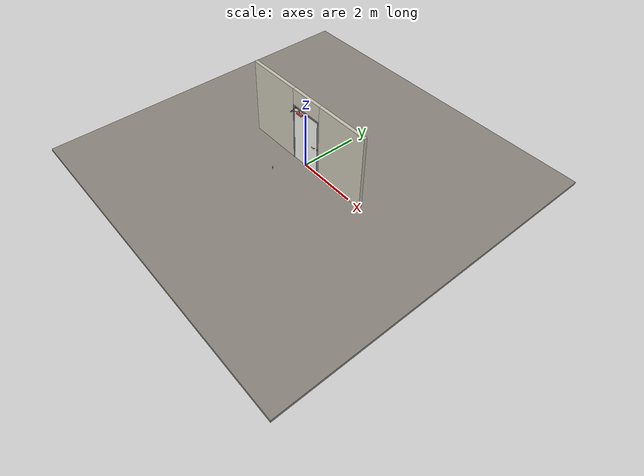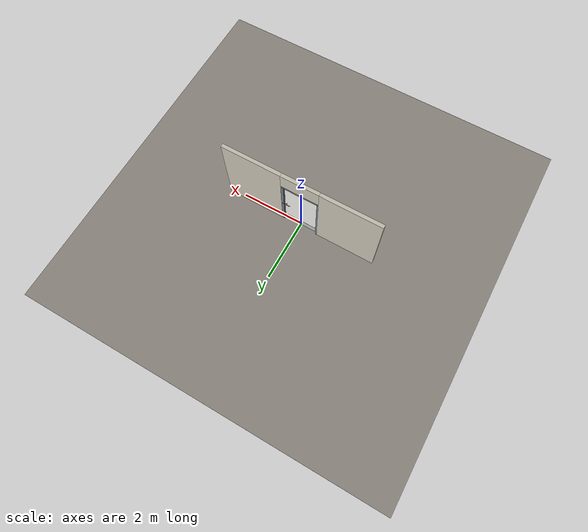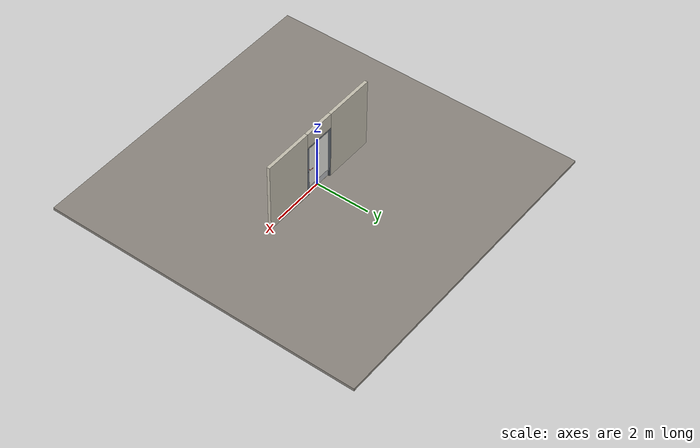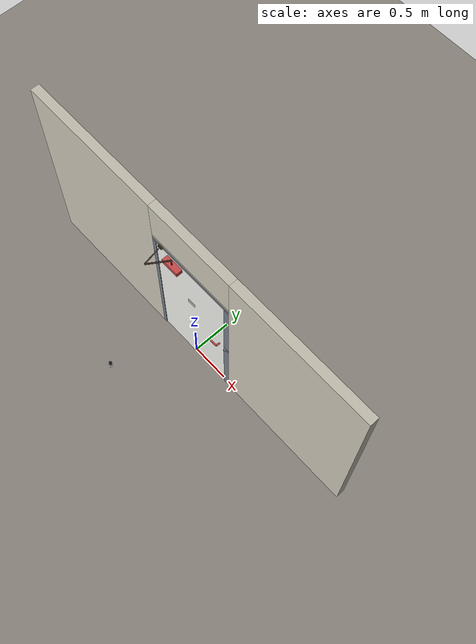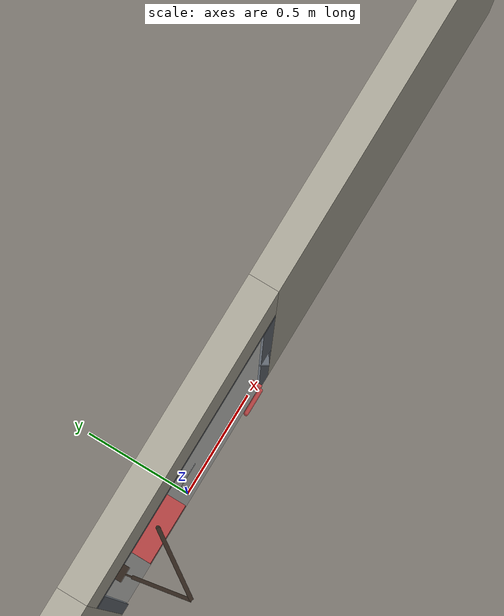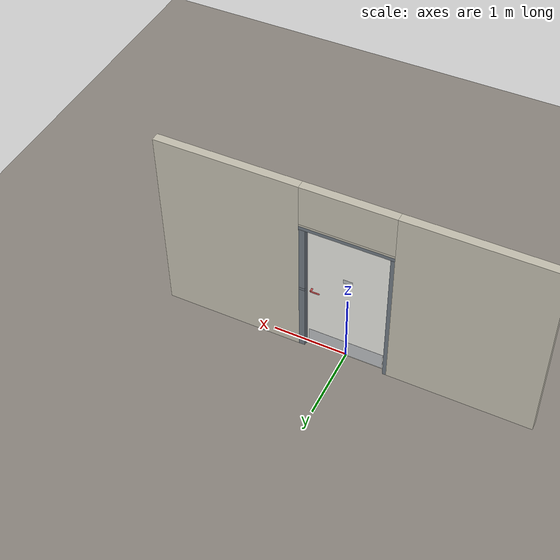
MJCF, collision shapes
<?xml version="1.0" ?>
<mujoco model="db0768_swing_single_full">
  <compiler angle="radian" meshdir="../../hardware" texturedir="../../textures" autolimits="true" inertiafromgeom="false"/>
  <option timestep="0.002" integrator="implicitfast" cone="elliptic" impratio="10" noslip_iterations="3">
    <flag multiccd="enable"/>
  </option>
  <size memory="16M"/>
  <default>
    <geom condim="4" solref="0.005 1" solimp="0.95 0.99 0.001"/>
    <joint solreflimit="0.005 1" solimplimit="0.95 0.99 0.001"/>
    <tendon solreflimit="0.005 1"/>
    <equality solref="0.002 1"/>
  </default>
  <visual>
    <headlight ambient="0.4 0.4 0.4" diffuse="0.7 0.7 0.7" specular="0.2 0.2 0.2"/>
    <quality shadowsize="4096"/>
    <map znear="0.01" zfar="60"/>
  </visual>
  <asset>
    <mesh name="closer_body_b226fdb10b" file="closer_body_b226fdb10b.obj"/>
    <mesh name="hinge_e22b26c0c1" file="hinge_e22b26c0c1.obj"/>
    <mesh name="hinge_jamb_e1d088f8dc" file="hinge_jamb_e1d088f8dc.obj"/>
    <mesh name="lever_9f02b544cf" file="lever_9f02b544cf.obj"/>
    <material name="mat_floor" rgba="0.55 0.53 0.5 1" specular="0.2" shininess="0.15" reflectance="0"/>
    <material name="mat_wall" rgba="0.78 0.76 0.7 1" specular="0.2" shininess="0.1" reflectance="0"/>
    <material name="mat_leaf" rgba="0.93 0.93 0.91 1" specular="0.2" shininess="0.36" reflectance="0"/>
    <material name="mat_hinge" rgba="0.65 0.66 0.68 1" specular="0.74" shininess="0.5" reflectance="0.36"/>
    <material name="mat_op_nickel_satin" rgba="0.72 0.7 0.66 1" specular="0.8" shininess="0.65" reflectance="0.4"/>
    <material name="mat_trim" rgba="0.85 0.66 0.3 1" specular="0.8" shininess="0.75" reflectance="0.4"/>
    <material name="mat_bolt" rgba="0.85 0.66 0.3 1" specular="0.8" shininess="0.75" reflectance="0.4"/>
    <material name="mat_frame" rgba="0.45 0.48 0.52 1" specular="0.32" shininess="0.6" reflectance="0.08"/>
    <material name="mat_seal" rgba="0.1 0.1 0.1 1" specular="0.2" shininess="0.1" reflectance="0"/>
    <material name="mat_closer" rgba="0.22 0.17 0.13 1" specular="0.8" shininess="0.6" reflectance="0.4"/>
    <material name="mat_kick" rgba="0.75 0.76 0.77 1" specular="0.8" shininess="0.65" reflectance="0.4"/>
    <material name="mat_sign" rgba="0.75 0.76 0.77 1" specular="0.8" shininess="0.65" reflectance="0.4"/>
    <material name="mat_bumper_stop" rgba="0.08 0.08 0.08 1" specular="0.2" shininess="0.1" reflectance="0"/>
    <material name="mat_stop_base" rgba="0.9 0.9 0.92 1" specular="0.8" shininess="0.9" reflectance="0.4"/>
    <texture name="skybox" type="skybox" builtin="gradient" rgb1="0.6 0.7 0.85" rgb2="0.9 0.92 0.95" width="256" height="256"/>
  </asset>
  <worldbody>
    <light name="sun" pos="1.5 -2.5 4" dir="-0.3 0.5 -0.8" directional="true" diffuse="0.8 0.8 0.8" specular="0.3 0.3 0.3" castshadow="true"/>
    <light name="fill" pos="-1.5 2.5 3" dir="0.3 -0.5 -0.7" directional="true" diffuse="0.35 0.35 0.4" castshadow="false"/>
    <camera name="robot_view" pos="0 -2.513687 1.734312" xyaxes="1 0 0 0 0.26963 0.962964" fovy="52"/>
    <camera name="far_view" pos="0 2.570688 1.734312" xyaxes="-1 0 0 0 -0.26963 0.962964" fovy="52"/>
    <camera name="iso" pos="1.932062 -2.106937 2.141063" xyaxes="0.741536 0.670913 0 -0.242917 0.268487 0.932151" fovy="46"/>
    <camera name="detail_handle" pos="0.543 -0.877 1.32" xyaxes="0.97561 0.219512 0 -0.070934 0.315262 0.94635" fovy="38"/>
    <geom name="floor" type="box" size="6 6 0.05" pos="0 0 -0.05" material="mat_floor" group="0" contype="1" conaffinity="1" friction="0.8 0.005 0.0001" density="2400"/>
    <geom name="wall_left" type="box" size="0.9565 0.0575 1.35" pos="-1.5435 0.0285 1.35" material="mat_wall" group="0" contype="1" conaffinity="1" friction="0.6 0.005 0.0001" density="800"/>
    <geom name="wall_right" type="box" size="0.9415 0.0575 1.35" pos="1.5585 0.0285 1.35" material="mat_wall" group="0" contype="1" conaffinity="1" friction="0.6 0.005 0.0001" density="800"/>
    <geom name="wall_header" type="box" size="0.602 0.0575 0.2875" pos="0.015 0.0285 2.4125" material="mat_wall" group="0" contype="1" conaffinity="1" friction="0.6 0.005 0.0001" density="800"/>
    <geom name="hinge_0_jamb" type="mesh" mesh="hinge_jamb_e1d088f8dc" pos="-0.534 -0.029 0.259" material="mat_hinge" group="1" contype="0" conaffinity="0" density="7850"/>
    <geom name="hinge_1_jamb" type="mesh" mesh="hinge_jamb_e1d088f8dc" pos="-0.534 -0.029 1.025" material="mat_hinge" group="1" contype="0" conaffinity="0" density="7850"/>
    <geom name="hinge_2_jamb" type="mesh" mesh="hinge_jamb_e1d088f8dc" pos="-0.534 -0.029 1.861" material="mat_hinge" group="1" contype="0" conaffinity="0" density="7850"/>
    <geom name="jamb_hinge" type="box" size="0.025 0.0575 1.0225" pos="-0.562 0.0285 1.0225" material="mat_frame" group="0" contype="1" conaffinity="1" friction="0.6 0.005 0.0001" density="300"/>
    <geom name="strike_1040_wall_n" type="box" size="0.04 0.03825 0.0183" pos="0.577 0.04775 1.04" material="mat_frame" group="0" contype="1" conaffinity="1" friction="0.6 0.005 0.0001" density="300"/>
    <geom name="strike_1040_wall_p" type="box" size="0.04 0.008 0.0183" pos="0.577 -0.0175 1.04" material="mat_frame" group="0" contype="1" conaffinity="1" friction="0.6 0.005 0.0001" density="300"/>
    <geom name="strike_1040_ramp" type="box" size="0.04 0.018028 0.0183" pos="0.580282 -0.018312 1.04" quat="0.957092 0 0 0.289784" material="mat_frame" group="0" contype="1" conaffinity="1" friction="0.12 0.005 0.0001" density="300"/>
    <geom name="strike_1040_back" type="box" size="0.0285 0.0095 0.0183" pos="0.5885 0 1.04" material="mat_frame" group="0" contype="1" conaffinity="1" friction="0.6 0.005 0.0001" density="300"/>
    <geom name="jamb_strike_0" type="box" size="0.04 0.0575 0.51085" pos="0.577 0.0285 0.51085" material="mat_frame" group="0" contype="1" conaffinity="1" friction="0.6 0.005 0.0001" density="300"/>
    <geom name="jamb_strike_1" type="box" size="0.04 0.0575 0.49335" pos="0.577 0.0285 1.55165" material="mat_frame" group="0" contype="1" conaffinity="1" friction="0.6 0.005 0.0001" density="300"/>
    <geom name="jamb_head" type="box" size="0.602 0.0575 0.025" pos="0.015 0.0285 2.07" material="mat_frame" group="0" contype="1" conaffinity="1" friction="0.6 0.005 0.0001" density="300"/>
    <geom name="head_stud" type="box" size="0.602 0.0575 0.015" pos="0.015 0.0285 2.11" material="mat_wall" group="0" contype="1" conaffinity="1" friction="0.6 0.005 0.0001" density="500"/>
    <geom name="stop_hinge" type="box" size="0.0055 0.016 1.0225" pos="-0.5315 0.0385 1.0225" material="mat_frame" group="0" contype="1" conaffinity="1" friction="0.6 0.005 0.0001" density="300"/>
    <geom name="stop_strike" type="box" size="0.0055 0.016 1.0225" pos="0.5315 0.0385 1.0225" material="mat_frame" group="0" contype="1" conaffinity="1" friction="0.6 0.005 0.0001" density="300"/>
    <geom name="stop_head" type="box" size="0.537 0.016 0.0055" pos="0 0.0385 2.0395" material="mat_frame" group="0" contype="1" conaffinity="1" friction="0.6 0.005 0.0001" density="300"/>
    <geom name="seal_hinge" type="box" size="0.004 0.004 1.0225" pos="-0.534 0.026 1.0225" material="mat_seal" group="1" contype="0" conaffinity="0" density="1100"/>
    <geom name="seal_strike" type="box" size="0.004 0.004 1.0225" pos="0.534 0.026 1.0225" material="mat_seal" group="1" contype="0" conaffinity="0" density="1100"/>
    <geom name="seal_head" type="box" size="0.517 0.004 0.008" pos="0 0.026 2.033" material="mat_seal" group="1" contype="0" conaffinity="0" density="1100"/>
    <geom name="closer_bracket" type="box" size="0.03 0.012 0.014" pos="-0.437 -0.041 2.075" material="mat_closer" group="1" contype="0" conaffinity="0" density="2700"/>
    <geom name="door_stop_base" type="cylinder" size="0.022 0.003" pos="-0.55 -0.93595 0.003" material="mat_stop_base" group="0" contype="1" conaffinity="1" friction="0.6 0.005 0.0001" density="7850"/>
    <geom name="door_stop_post" type="cylinder" size="0.012 0.0245" pos="-0.55 -0.93595 0.0305" material="mat_stop_base" group="0" contype="1" conaffinity="1" friction="0.6 0.005 0.0001" density="7850"/>
    <geom name="door_stop_bumper" type="cylinder" size="0.022 0.02" pos="-0.55 -0.93595 0.075" material="mat_bumper_stop" group="0" contype="1" conaffinity="1" friction="0.6 0.005 0.0001" density="1100"/>
    <site name="approach_point" pos="0 -1.5 0" quat="1 0 0 0" size="0.05" rgba="0.2 0.9 0.2 0.5" group="4"/>
    <site name="goal_point" pos="0 1.5 0" quat="1 0 0 0" size="0.05" rgba="0.2 0.9 0.2 0.5" group="4"/>
    <site name="door_plane_center" pos="0 0 1.0225" quat="1 0 0 0" size="0.02" rgba="0.2 0.9 0.2 0.5" group="4"/>
    <body name="leaf" pos="-0.537 0 0">
      <inertial pos="0.504948 -0.006086 1.090911" mass="65.260735" quat="-0.489663 0.475288 0.515917 0.517842" diaginertia="5.887430256 27.323417766 33.147517496"/>
      <joint name="leaf_hinge" type="hinge" axis="0 0 -1" pos="0.003 -0.029 0" limited="true" range="0 1.570796" solreflimit="0.02 1" damping="10.475663" frictionloss="2.230726" stiffness="14.183889" springref="-2.144687" armature="0.02"/>
      <geom name="leaf_slab" type="box" size="0.5335 0.022 1.016" pos="0.5365 0 1.025" material="mat_leaf" group="0" contype="1" conaffinity="1" friction="0.4 0.005 0.0001" density="1"/>
      <geom name="hinge_0" type="mesh" mesh="hinge_e22b26c0c1" pos="0.003 -0.029 0.259" material="mat_hinge" group="1" contype="0" conaffinity="0" density="7850"/>
      <geom name="hinge_1" type="mesh" mesh="hinge_e22b26c0c1" pos="0.003 -0.029 1.025" material="mat_hinge" group="1" contype="0" conaffinity="0" density="7850"/>
      <geom name="hinge_2" type="mesh" mesh="hinge_e22b26c0c1" pos="0.003 -0.029 1.861" material="mat_hinge" group="1" contype="0" conaffinity="0" density="7850"/>
      <geom name="leaf_latch_bolt_faceplate" type="box" size="0.0006 0.014 0.0283" pos="1.0694 0 1.04" material="mat_bolt" group="1" contype="0" conaffinity="0" density="8500"/>
      <geom name="closer_body" type="mesh" mesh="closer_body_b226fdb10b" pos="0.3 -0.022 1.952" quat="0.707107 0.707107 0 0" material="mat_closer" group="1" contype="0" conaffinity="0" density="2000"/>
      <geom name="closer_body_col" type="box" size="0.12 0.04 0.03" pos="0.3 -0.062 1.952" material="mat_closer" group="3" contype="1" conaffinity="1" rgba="0.8 0.3 0.3 0.25" friction="0.6 0.005 0.0001" density="2000"/>
      <geom name="closer_pinion_shaft" type="cylinder" size="0.008 0.0615" pos="0.3 -0.064 2.0135" material="mat_closer" group="1" contype="0" conaffinity="0" density="2700"/>
      <geom name="kick_plate_p" type="box" size="0.5035 0.0008 0.125" pos="0.5365 0.0228 0.144" material="mat_kick" group="2" contype="0" conaffinity="0" density="7900"/>
      <geom name="sign_push" type="box" size="0.06 0.001 0.03" pos="0.5365 0.023 1.359" material="mat_sign" group="2" contype="0" conaffinity="0" density="7900"/>
      <geom name="sign_pull" type="box" size="0.06 0.001 0.03" pos="0.5365 -0.023 1.359" material="mat_sign" group="2" contype="0" conaffinity="0" density="7900"/>
      <site name="leaf_edge_mid" pos="1.07 0 1.016" quat="1 0 0 0" size="0.02" rgba="0.2 0.9 0.2 0.5" group="4"/>
      <body name="leaf_handle" pos="1 0 1.04">
        <inertial pos="-0.028544 0 0" mass="0.978187" quat="0 0.707107 0.707107 0" diaginertia="0.001772047 0.003604455 0.005198299"/>
        <joint name="leaf_handle_hinge" type="hinge" axis="0 -1 0" limited="true" range="0 0.96" damping="0.245624" frictionloss="0.048" stiffness="1.2" springref="-0.458333" armature="0.01"/>
        <geom name="leaf_handle_spindle" type="cylinder" size="0.006 0.03" pos="0 0 0" quat="0.707107 -0.707107 0 0" material="mat_op_nickel_satin" group="1" contype="0" conaffinity="0" density="7850"/>
        <geom name="leaf_handle_lever_n" type="mesh" mesh="lever_9f02b544cf" pos="0 -0.022 0" quat="0.707107 0.707107 0 0" material="mat_op_nickel_satin" group="1" contype="0" conaffinity="0" density="3000"/>
        <geom name="leaf_handle_lever_col_n" type="capsule" size="0.0095 0.053" pos="-0.0625 -0.077 0" quat="0.707107 0 -0.707107 0" material="mat_op_nickel_satin" group="3" contype="1" conaffinity="1" rgba="0.8 0.3 0.3 0.25" friction="0.7 0.01 0.0001" density="3000"/>
        <geom name="leaf_handle_hub_col_n" type="cylinder" size="0.012 0.022" pos="0 -0.052 0" quat="0.707107 -0.707107 0 0" material="mat_op_nickel_satin" group="3" contype="1" conaffinity="1" rgba="0.8 0.3 0.3 0.25" friction="0.6 0.005 0.0001" density="3000"/>
        <geom name="leaf_handle_lever_p" type="mesh" mesh="lever_9f02b544cf" pos="0 0.022 0" quat="-0.707107 0.707107 0 0" material="mat_op_nickel_satin" group="1" contype="0" conaffinity="0" density="3000"/>
        <geom name="leaf_handle_lever_col_p" type="capsule" size="0.0095 0.053" pos="-0.0625 0.077 0" quat="0.707107 0 -0.707107 0" material="mat_op_nickel_satin" group="3" contype="1" conaffinity="1" rgba="0.8 0.3 0.3 0.25" friction="0.7 0.01 0.0001" density="3000"/>
        <geom name="leaf_handle_hub_col_p" type="cylinder" size="0.012 0.022" pos="0 0.052 0" quat="0.707107 -0.707107 0 0" material="mat_op_nickel_satin" group="3" contype="1" conaffinity="1" rgba="0.8 0.3 0.3 0.25" friction="0.6 0.005 0.0001" density="3000"/>
        <site name="leaf_handle_grip_n" pos="-0.1 -0.077 0" quat="1 0 0 0" size="0.012" rgba="0.2 0.9 0.2 0.5" group="4"/>
        <site name="leaf_handle_grip_p" pos="-0.1 0.077 0" quat="1 0 0 0" size="0.012" rgba="0.2 0.9 0.2 0.5" group="4"/>
      </body>
      <body name="leaf_latch_bolt" pos="1.07 0 1.04">
        <inertial pos="-0.0055 0 0" mass="0.074627" quat="0.92388 -0.382683 0 0" diaginertia="0.000002271 0.000013255 0.000013255"/>
        <joint name="leaf_latch_bolt_slide" type="slide" axis="-1 0 0" limited="true" range="0 0.019" damping="2" frictionloss="0.3" stiffness="600" springref="-0.01" armature="0.1"/>
        <geom name="leaf_latch_bolt_capsule" type="capsule" size="0.008 0.0165" pos="-0.0055 0 0" quat="0.707107 0 0.707107 0" material="mat_bolt" group="0" contype="1" conaffinity="1" friction="0.2 0.005 0.0001" density="8500"/>
      </body>
      <body name="closer_arm_main" pos="0.3 -0.064 2.075" quat="0.472212 0 0 -0.881485">
        <inertial pos="0.14 0 0" mass="0.12096" quat="1 0 0 0" diaginertia="0.000003588 0.00079128 0.000792852"/>
        <joint name="closer_pinion" type="hinge" axis="0 0 1" limited="false" damping="0.01" armature="0.002"/>
        <geom name="closer_arm_main_geom" type="box" size="0.14 0.008 0.005" pos="0.14 0 0" material="mat_closer" group="1" contype="0" conaffinity="0" density="2700"/>
        <body name="closer_arm_fore" pos="0.28 0 0" quat="-0.371222 0 0 0.928544">
          <inertial pos="0.128088 0 0" mass="0.076531" quat="1 0 0 0" diaginertia="0.000001771 0.000437665 0.000438201"/>
          <joint name="closer_elbow" type="hinge" axis="0 0 1" limited="false" damping="0.01" armature="0.002"/>
          <geom name="closer_arm_fore_geom" type="box" size="0.1125 0.007 0.004" pos="0.1125 0 0" material="mat_closer" group="1" contype="0" conaffinity="0" density="2700"/>
          <geom name="closer_fore_neck" type="box" size="0.0175 0.003 0.003" pos="0.2425 0 0" material="mat_closer" group="1" contype="0" conaffinity="0" density="2700"/>
          <geom name="closer_fore_pivot" type="cylinder" size="0.005 0.012" pos="0.26 0 0" material="mat_closer" group="1" contype="0" conaffinity="0" density="2700"/>
        </body>
      </body>
    </body>
  </worldbody>
  <tendon>
    <fixed name="leaf_latch_bolt_coupling" limited="true" range="0 10">
      <joint joint="leaf_latch_bolt_slide" coef="1"/>
      <joint joint="leaf_handle_hinge" coef="-0.020879"/>
    </fixed>
  </tendon>
  <equality>
    <connect name="closer_arm_connect" body1="closer_arm_fore" body2="world" anchor="0.26 0 0" active="true"/>
  </equality>
  <contact>
    <exclude body1="closer_arm_main" body2="leaf"/>
    <exclude body1="closer_arm_fore" body2="leaf"/>
    <exclude body1="closer_arm_main" body2="closer_arm_fore"/>
  </contact>
  <sensor>
    <jointpos name="leaf_hinge_pos" joint="leaf_hinge"/>
    <jointvel name="leaf_hinge_vel" joint="leaf_hinge"/>
    <jointpos name="leaf_handle_hinge_pos" joint="leaf_handle_hinge"/>
    <jointvel name="leaf_handle_hinge_vel" joint="leaf_handle_hinge"/>
    <jointpos name="leaf_latch_bolt_slide_pos" joint="leaf_latch_bolt_slide"/>
    <jointvel name="leaf_latch_bolt_slide_vel" joint="leaf_latch_bolt_slide"/>
  </sensor>
</mujoco>
